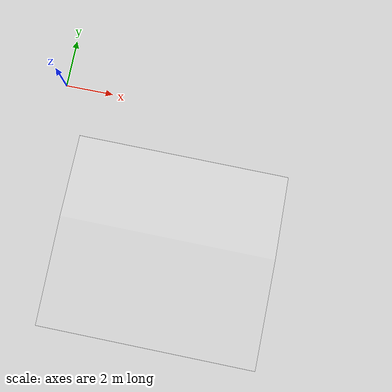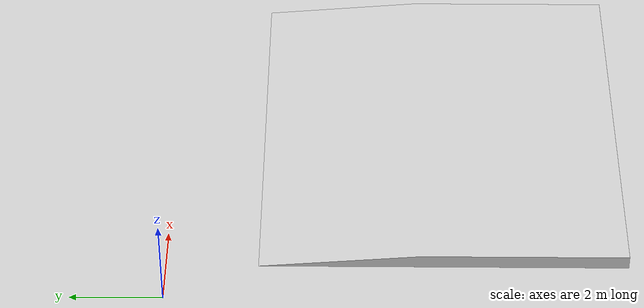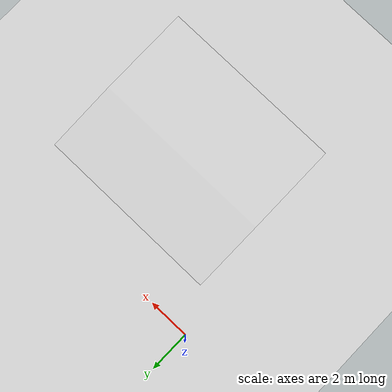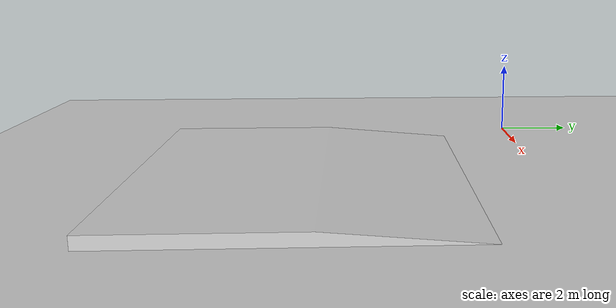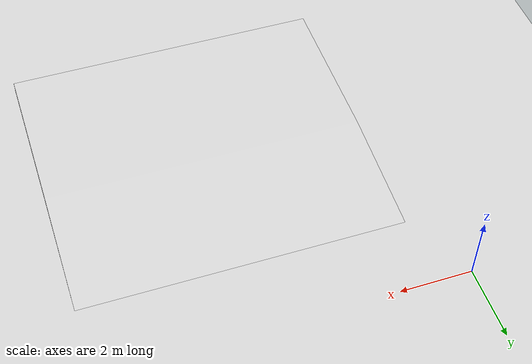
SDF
<?xml version="1.0"?>
<sdf version="1.4">
  <world name="default">
    <include>
      <uri>model://ground_plane</uri>
    </include>
    <include>
      <uri>model://sun</uri>
    </include>
    <include>
      <uri>model://slope_incline</uri>
      <name>slope_5deg_incline</name>
      <pose>10 -2 0  1.5708 0 -1.5708</pose>
    </include>
  </world>
</sdf>

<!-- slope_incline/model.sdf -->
<sdf version='1.6'>
  <model name='slope_5deg_incline'>
  <pose>12 -2 0  1.5708 0 -1.5708</pose>
  <static>true</static>
  <link name="body">
  <collision name="collision">
    <geometry>
      <mesh><uri>model://slope_incline/slope_5deg.dae</uri></mesh>
    </geometry>
    <surface>
      <friction>
        <ode>
          <mu>100</mu>
          <mu2>50</mu2>
        </ode>
      </friction>
    </surface>
  </collision>
    <visual name="visual">
      <geometry>
        <mesh><uri>model://slope_incline/slope_5deg.dae</uri></mesh>
      </geometry>
    </visual>
  </link>
  </model>
</sdf>
